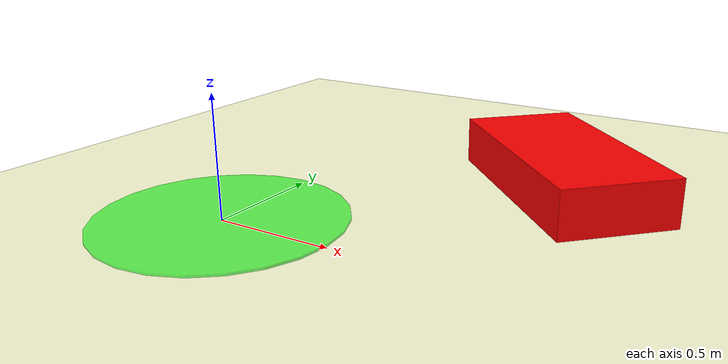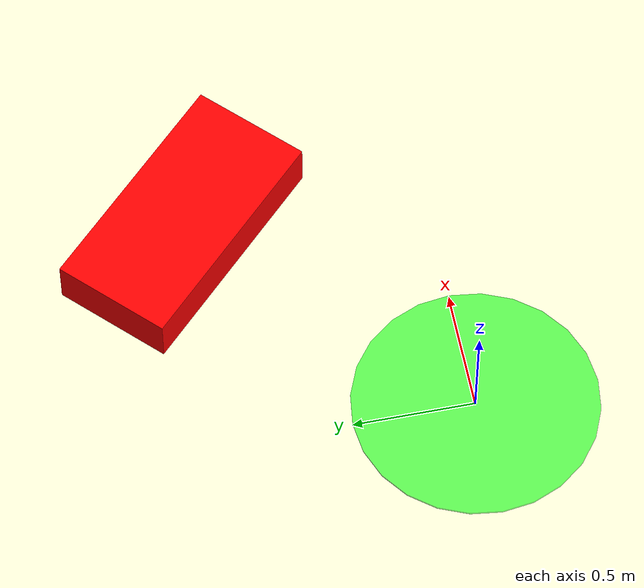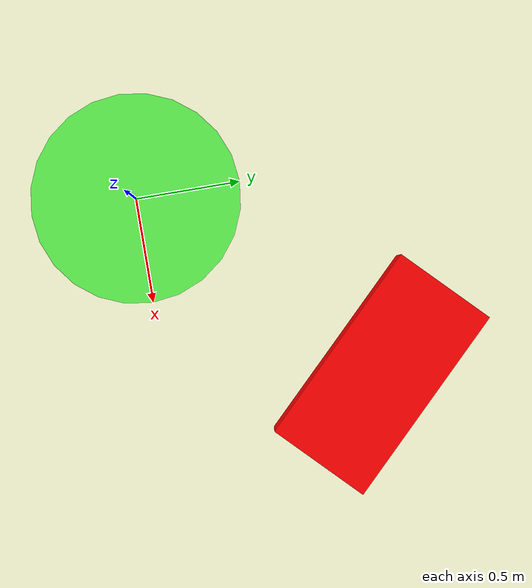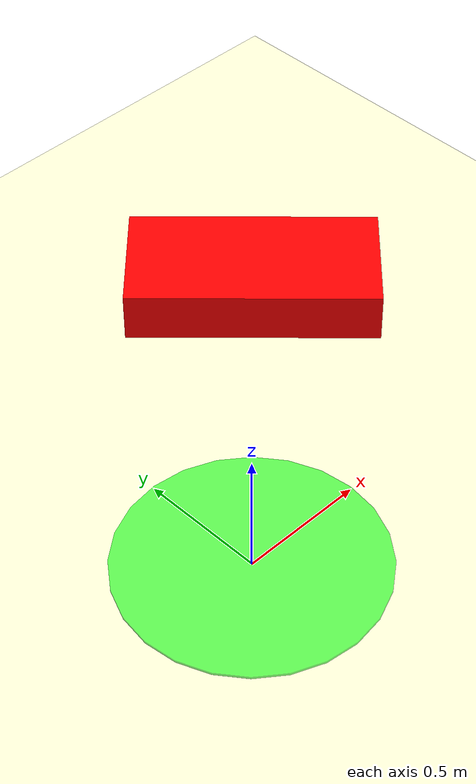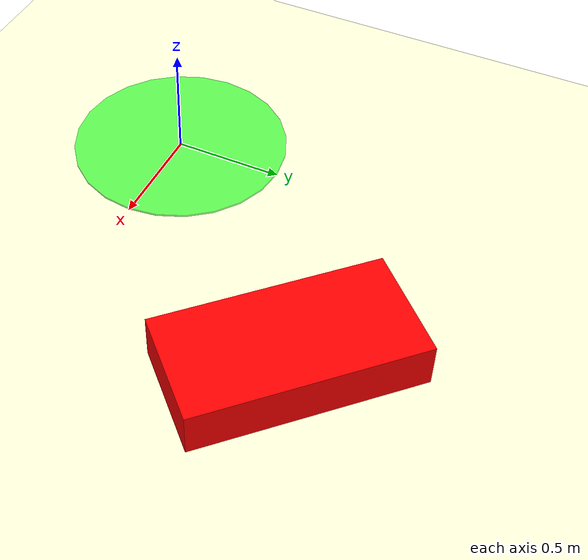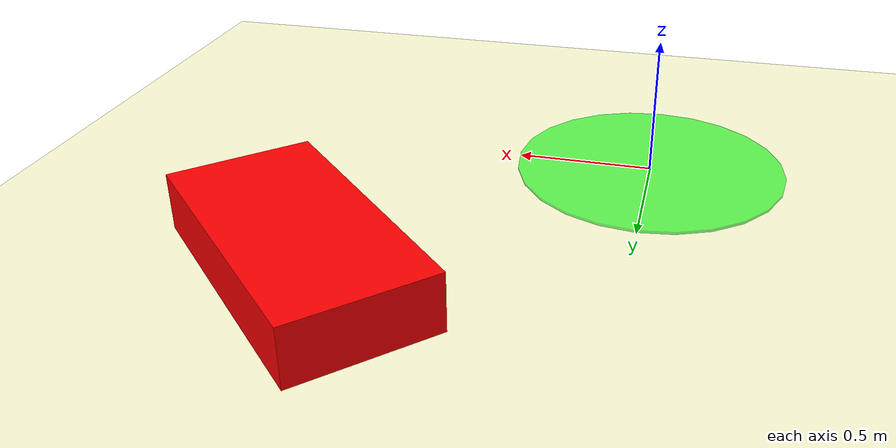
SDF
<?xml version="1.0" ?>
<sdf version="1.10">
  <world name="small_world_obs">
    <physics name="1ms" type="ignored">
      <max_step_size>0.001</max_step_size>
      <real_time_factor>1.0</real_time_factor>
    </physics>

    <!-- Plugins -->
    <plugin filename="gz-sim-physics-system" name="gz::sim::systems::Physics"/>
    <plugin filename="gz-sim-user-commands-system" name="gz::sim::systems::UserCommands"/>
    <plugin filename="gz-sim-scene-broadcaster-system" name="gz::sim::systems::SceneBroadcaster"/>

    <!-- Light -->
    <light type="directional" name="sun">
      <cast_shadows>true</cast_shadows>
      <pose>0 0 10 0 0 0</pose>
      <diffuse>0.8 0.8 0.8 1</diffuse>
      <specular>0.2 0.2 0.2 1</specular>
      <attenuation>
        <range>1000</range>
        <constant>0.9</constant>
        <linear>0.01</linear>
        <quadratic>0.001</quadratic>
      </attenuation>
      <direction>-0.5 0.1 -0.9</direction>
    </light>

    <!-- Ground -->
    <model name="ground_plane">
      <static>true</static>
      <link name="link">
        <collision name="collision">
          <geometry>
            <plane><normal>0 0 1</normal></plane>
          </geometry>
        </collision>
        <visual name="visual">
          <geometry>
            <plane><normal>0 0 1</normal><size>3 4</size></plane>
          </geometry>
          <material>
            <ambient>1 1 0.85 1</ambient>
            <diffuse>1 1 0.85 1</diffuse>
            <specular>0.3 0.3 0.3 1</specular>
          </material>
        </visual>
      </link>
    </model>

    <model name="goal_region">
      <static>true</static>
  	<pose>0 0 0.01 0 0 0</pose> <!-- Centro della scena, appena sopra il piano -->
  	<link name="link">
    	  <visual name="visual">
      	    <geometry>
                <cylinder>
                  <radius>0.5</radius>     <!-- Raggio della goal region -->
                  <length>0.01</length>    <!-- Molto sottile -->
                </cylinder>
      	    </geometry>
            <material>
              <ambient>0.0 1.0 0.0 0.6</ambient>   <!-- Verde trasparente -->
              <diffuse>0.0 1.0 0.0 0.6</diffuse>
            </material>
            <transparency>0.4</transparency>     <!-- Opzionale: rende il cilindro meno opaco -->
            <cast_shadows>false</cast_shadows>   <!-- Per evitare ombre inutili -->
          </visual>
       </link>
    </model>

    <model name="obstacle_box">
      <static>true</static> <!-- L'oggetto non si muove -->
      <pose>1 1 0.075 0 0 0.7854</pose> <!-- x y z roll pitch yaw -->
      <link name="link">
        <collision name="collision">
          <geometry>
            <box>
              <size>0.5 1 0.25</size> <!-- lunghezza x larghezza x altezza -->
            </box>
          </geometry>
        </collision>
        <visual name="visual">
          <geometry>
            <box>
              <size>0.5 1 0.25</size>
            </box>
          </geometry>
          <material>
            <ambient>1 0.0 0.0 1</ambient>
            <diffuse>1 0.0 0.0 1</diffuse>
          </material>
        </visual>
      </link>
    </model>

  </world>

</sdf>
